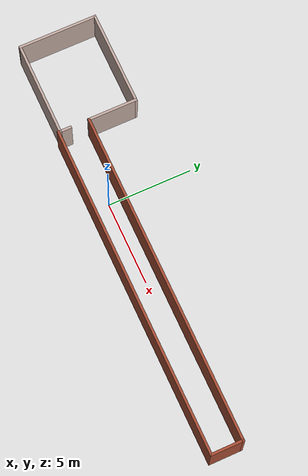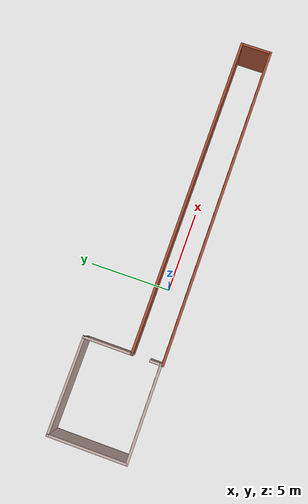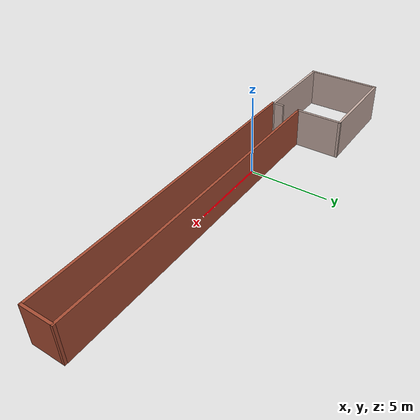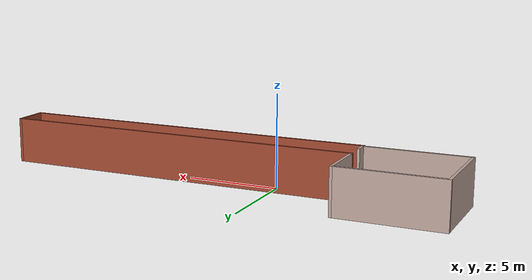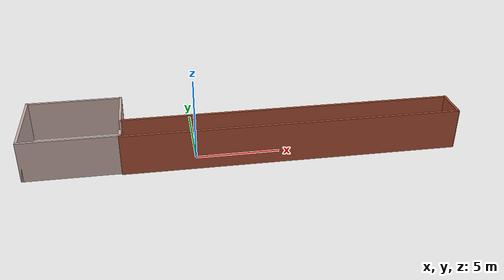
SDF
<?xml version='1.0'?>
<sdf version='1.6'>
  <model name='20m_corridor'>
    <pose frame=''>2.85775 1.23388 0 0 -0 0</pose>
    <link name='Wall_19'>
      <collision name='Wall_19_Collision'>
        <geometry>
          <box>
            <size>20 0.15 2.5</size>
          </box>
        </geometry>
        <pose frame=''>0 0 1.25 0 -0 0</pose>
      </collision>
      <visual name='Wall_19_Visual'>
        <pose frame=''>0 0 1.25 0 -0 0</pose>
        <geometry>
          <box>
            <size>20 0.15 2.5</size>
          </box>
        </geometry>
        <material>
          <script>
            <uri>file://media/materials/scripts/gazebo.material</uri>
            <name>Gazebo/Bricks</name>
          </script>
          <ambient>1 1 1 1</ambient>
        </material>
        <meta>
          <layer>0</layer>
        </meta>
      </visual>
      <pose frame=''>2.8 -2.35 0 0 -0 0</pose>
    </link>
    <link name='Wall_20'>
      <collision name='Wall_20_Collision'>
        <geometry>
          <box>
            <size>2 0.15 2.5</size>
          </box>
        </geometry>
        <pose frame=''>0 0 1.25 0 -0 0</pose>
      </collision>
      <visual name='Wall_20_Visual'>
        <pose frame=''>0 0 1.25 0 -0 0</pose>
        <geometry>
          <box>
            <size>2 0.15 2.5</size>
          </box>
        </geometry>
        <material>
          <script>
            <uri>file://media/materials/scripts/gazebo.material</uri>
            <name>Gazebo/Bricks</name>
          </script>
          <ambient>1 1 1 1</ambient>
        </material>
        <meta>
          <layer>0</layer>
        </meta>
      </visual>
      <pose frame=''>12.725 -1.425 0 0 -0 1.5708</pose>
    </link>
    <link name='Wall_21'>
      <collision name='Wall_21_Collision'>
        <geometry>
          <box>
            <size>20 0.15 2.5</size>
          </box>
        </geometry>
        <pose frame=''>0 0 1.25 0 -0 0</pose>
      </collision>
      <visual name='Wall_21_Visual'>
        <pose frame=''>0 0 1.25 0 -0 0</pose>
        <geometry>
          <box>
            <size>20 0.15 2.5</size>
          </box>
        </geometry>
        <material>
          <script>
            <uri>file://media/materials/scripts/gazebo.material</uri>
            <name>Gazebo/Bricks</name>
          </script>
          <ambient>1 1 1 1</ambient>
        </material>
        <meta>
          <layer>0</layer>
        </meta>
      </visual>
      <pose frame=''>2.8 -0.5 0 0 -0 3.14159</pose>
    </link>
    <link name='Wall_22'>
      <collision name='Wall_22_Collision'>
        <geometry>
          <box>
            <size>3 0.15 2.5</size>
          </box>
        </geometry>
        <pose frame=''>0 0 1.25 0 -0 0</pose>
      </collision>
      <visual name='Wall_22_Visual'>
        <pose frame=''>0 0 1.25 0 -0 0</pose>
        <geometry>
          <box>
            <size>3 0.15 2.5</size>
          </box>
        </geometry>
        <material>
          <script>
            <uri>file://media/materials/scripts/gazebo.material</uri>
            <name>Gazebo/Grey</name>
          </script>
          <ambient>0.760784 0.662745 0.627451 1</ambient>
        </material>
        <meta>
          <layer>0</layer>
        </meta>
      </visual>
      <pose frame=''>-7.125 0.925 0 0 -0 1.5708</pose>
    </link>
    <link name='Wall_23'>
      <collision name='Wall_23_Collision'>
        <geometry>
          <box>
            <size>5.75 0.15 2.5</size>
          </box>
        </geometry>
        <pose frame=''>0 0 1.25 0 -0 0</pose>
      </collision>
      <visual name='Wall_23_Visual'>
        <pose frame=''>0 0 1.25 0 -0 0</pose>
        <geometry>
          <box>
            <size>5.75 0.15 2.5</size>
          </box>
        </geometry>
        <material>
          <script>
            <uri>file://media/materials/scripts/gazebo.material</uri>
            <name>Gazebo/Grey</name>
          </script>
          <ambient>0.760784 0.662745 0.627451 1</ambient>
        </material>
        <meta>
          <layer>0</layer>
        </meta>
      </visual>
      <pose frame=''>-9.925 2.35 0 0 -0 3.14159</pose>
    </link>
    <link name='Wall_24'>
      <collision name='Wall_24_Collision'>
        <geometry>
          <box>
            <size>4.75 0.15 2.5</size>
          </box>
        </geometry>
        <pose frame=''>0 0 1.25 0 -0 0</pose>
      </collision>
      <visual name='Wall_24_Visual'>
        <pose frame=''>0 0 1.25 0 -0 0</pose>
        <geometry>
          <box>
            <size>4.75 0.15 2.5</size>
          </box>
        </geometry>
        <material>
          <script>
            <uri>file://media/materials/scripts/gazebo.material</uri>
            <name>Gazebo/Grey</name>
          </script>
          <ambient>0.760784 0.662745 0.627451 1</ambient>
        </material>
        <meta>
          <layer>0</layer>
        </meta>
      </visual>
      <pose frame=''>-12.725 0.05 0 0 -0 -1.5708</pose>
    </link>
    <link name='Wall_25'>
      <collision name='Wall_25_Collision'>
        <geometry>
          <box>
            <size>5.75 0.15 2.5</size>
          </box>
        </geometry>
        <pose frame=''>0 0 1.25 0 -0 0</pose>
      </collision>
      <visual name='Wall_25_Visual'>
        <pose frame=''>0 0 1.25 0 -0 0</pose>
        <geometry>
          <box>
            <size>5.75 0.15 2.5</size>
          </box>
        </geometry>
        <material>
          <script>
            <uri>file://media/materials/scripts/gazebo.material</uri>
            <name>Gazebo/Grey</name>
          </script>
          <ambient>0.760784 0.662745 0.627451 1</ambient>
        </material>
        <meta>
          <layer>0</layer>
        </meta>
      </visual>
      <pose frame=''>-9.925 -2.25 0 0 -0 0</pose>
    </link>
    <link name='Wall_26'>
      <collision name='Wall_26_Collision'>
        <geometry>
          <box>
            <size>0.75 0.15 2.5</size>
          </box>
        </geometry>
        <pose frame=''>0 0 1.25 0 -0 0</pose>
      </collision>
      <visual name='Wall_26_Visual'>
        <pose frame=''>0 0 1.25 0 -0 0</pose>
        <geometry>
          <box>
            <size>0.75 0.15 2.5</size>
          </box>
        </geometry>
        <material>
          <script>
            <uri>file://media/materials/scripts/gazebo.material</uri>
            <name>Gazebo/Grey</name>
          </script>
          <ambient>0.760784 0.662745 0.627451 1</ambient>
        </material>
        <meta>
          <layer>0</layer>
        </meta>
      </visual>
      <pose frame=''>-7.125 -1.95 0 0 -0 1.5708</pose>
    </link>
    <static>1</static>
  </model>
</sdf>
